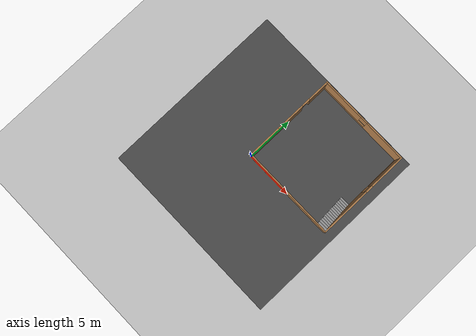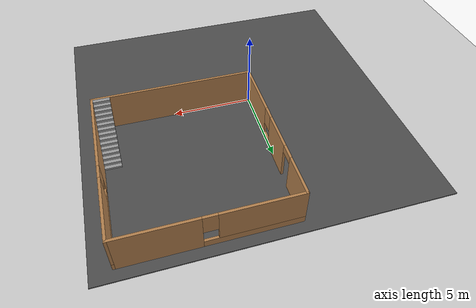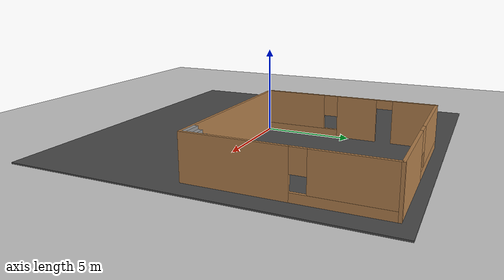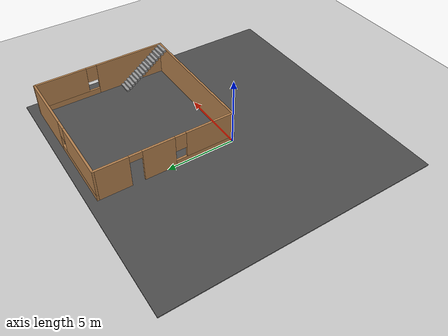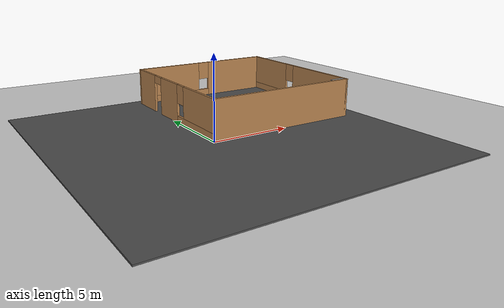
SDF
<sdf version="1.6">
 <world name="default">
  <light name="sun" type="directional">
   <pose>0 0 10 0 -0 0</pose>
   <diffuse>0.8 0.8 0.8 1</diffuse>
   <specular>0.2 0.2 0.2 1</specular>
   <attenuation>
    <range>1000</range>
    <constant>0.9</constant>
    <linear>0.01</linear>
    <quadratic>0.001</quadratic>
   </attenuation>
   <direction>-0.5 0.1 -0.9</direction>
  </light>
  <model name="ground_plane">
   <static>1</static>
   <link name="link">
    <collision name="collision">
     <geometry><plane><normal>0 0 1</normal><size>100 100</size></plane></geometry>
     <surface>
      <contact><collide_bitmask>65535</collide_bitmask></contact>
      <friction><ode><mu>100</mu><mu2>50</mu2></ode></friction>
     </surface>
    </collision>
    <visual name="visual">
     <cast_shadows>0</cast_shadows>
     <geometry><plane><normal>0 0 1</normal><size>100 100</size></plane></geometry>
     <material>
      <script><uri>file://media/materials/scripts/gazebo.material</uri><name>Gazebo/Grey</name></script>
     </material>
    </visual>
   </link>
  </model>
  <gravity>0 0 -9.8</gravity>
  <magnetic_field>6e-06 2.3e-05 -4.2e-05</magnetic_field>
  <atmosphere type="adiabatic"/>
  <physics name="default_physics" default="0" type="ode">
   <max_step_size>0.001</max_step_size>
   <real_time_factor>1</real_time_factor>
   <real_time_update_rate>1000</real_time_update_rate>
  </physics>
  <scene><ambient>0.4 0.4 0.4 1</ambient><background>0.7 0.7 0.7 1</background><shadows>1</shadows></scene>
  <audio><device>default</device></audio>
  <spherical_coordinates>
   <surface_model>EARTH_WGS84</surface_model>
   <latitude_deg>0</latitude_deg>
   <longitude_deg>0</longitude_deg>
   <elevation>0</elevation>
   <heading_deg>0</heading_deg>
  </spherical_coordinates>
  <model name="asphalt_plane">
   <static>1</static>
   <link name="link">
    <collision name="collision"><geometry><box><size>20 20 0.1</size></box></geometry></collision>
    <visual name="visual">
     <cast_shadows>0</cast_shadows>
     <geometry><box><size>20 20 0.1</size></box></geometry>
     <material>
      <script>
       <uri>model://asphalt_plane/materials/scripts</uri>
       <uri>model://asphalt_plane/materials/textures</uri>
       <name>vrc/asphalt</name>
      </script>
     </material>
    </visual>
   </link>
   <pose>1.14032 0.590295 0 0 -0 0</pose>
  </model>
  <model name="big_room">
   <pose>4.95889 4.95098 0 0 -0 0</pose>
   <link name="Stairs_0">
    <visual name="Stairs_0_Visual_0">
     <pose>4.3541 -1.47553 0.083333 0 -0 0</pose>
     <geometry><box><size>1 0.233333 0.166667</size></box></geometry>
     <material>
      <script><uri>file://media/materials/scripts/gazebo.material</uri><name>Gazebo/Grey</name></script>
      <ambient>1 1 1 1</ambient>
     </material>
     <meta><layer>0</layer></meta>
    </visual>
    <collision name="Stairs_0_Collision_0">
     <geometry><box><size>1 0.233333 0.166667</size></box></geometry>
     <pose>4.3541 -1.47553 0.083333 0 -0 0</pose>
    </collision>
    <visual name="Stairs_0_Visual_1">
     <pose>4.3541 -1.70886 0.25 0 -0 0</pose>
     <geometry><box><size>1 0.233333 0.166667</size></box></geometry>
     <material>
      <script><uri>file://media/materials/scripts/gazebo.material</uri><name>Gazebo/Grey</name></script>
      <ambient>1 1 1 1</ambient>
     </material>
     <meta><layer>0</layer></meta>
    </visual>
    <collision name="Stairs_0_Collision_1">
     <geometry><box><size>1 0.233333 0.166667</size></box></geometry>
     <pose>4.3541 -1.70886 0.25 0 -0 0</pose>
    </collision>
    <visual name="Stairs_0_Visual_2">
     <pose>4.3541 -1.94219 0.416667 0 -0 0</pose>
     <geometry><box><size>1 0.233333 0.166667</size></box></geometry>
     <material>
      <script><uri>file://media/materials/scripts/gazebo.material</uri><name>Gazebo/Grey</name></script>
      <ambient>1 1 1 1</ambient>
     </material>
     <meta><layer>0</layer></meta>
    </visual>
    <collision name="Stairs_0_Collision_2">
     <geometry><box><size>1 0.233333 0.166667</size></box></geometry>
     <pose>4.3541 -1.94219 0.416667 0 -0 0</pose>
    </collision>
    <visual name="Stairs_0_Visual_3">
     <pose>4.3541 -2.17553 0.583333 0 -0 0</pose>
     <geometry><box><size>1 0.233333 0.166667</size></box></geometry>
     <material>
      <script><uri>file://media/materials/scripts/gazebo.material</uri><name>Gazebo/Grey</name></script>
      <ambient>1 1 1 1</ambient>
     </material>
     <meta><layer>0</layer></meta>
    </visual>
    <collision name="Stairs_0_Collision_3">
     <geometry><box><size>1 0.233333 0.166667</size></box></geometry>
     <pose>4.3541 -2.17553 0.583333 0 -0 0</pose>
    </collision>
    <visual name="Stairs_0_Visual_4">
     <pose>4.3541 -2.40886 0.75 0 -0 0</pose>
     <geometry><box><size>1 0.233333 0.166667</size></box></geometry>
     <material>
      <script><uri>file://media/materials/scripts/gazebo.material</uri><name>Gazebo/Grey</name></script>
      <ambient>1 1 1 1</ambient>
     </material>
     <meta><layer>0</layer></meta>
    </visual>
    <collision name="Stairs_0_Collision_4">
     <geometry><box><size>1 0.233333 0.166667</size></box></geometry>
     <pose>4.3541 -2.40886 0.75 0 -0 0</pose>
    </collision>
    <visual name="Stairs_0_Visual_5">
     <pose>4.3541 -2.6422 0.916667 0 -0 0</pose>
     <geometry><box><size>1 0.233333 0.166667</size></box></geometry>
     <material>
      <script><uri>file://media/materials/scripts/gazebo.material</uri><name>Gazebo/Grey</name></script>
      <ambient>1 1 1 1</ambient>
     </material>
     <meta><layer>0</layer></meta>
    </visual>
    <collision name="Stairs_0_Collision_5">
     <geometry><box><size>1 0.233333 0.166667</size></box></geometry>
     <pose>4.3541 -2.6422 0.916667 0 -0 0</pose>
    </collision>
    <visual name="Stairs_0_Visual_6">
     <pose>4.3541 -2.87553 1.08333 0 -0 0</pose>
     <geometry><box><size>1 0.233333 0.166667</size></box></geometry>
     <material>
      <script><uri>file://media/materials/scripts/gazebo.material</uri><name>Gazebo/Grey</name></script>
      <ambient>1 1 1 1</ambient>
     </material>
     <meta><layer>0</layer></meta>
    </visual>
    <collision name="Stairs_0_Collision_6">
     <geometry><box><size>1 0.233333 0.166667</size></box></geometry>
     <pose>4.3541 -2.87553 1.08333 0 -0 0</pose>
    </collision>
    <visual name="Stairs_0_Visual_7">
     <pose>4.3541 -3.10886 1.25 0 -0 0</pose>
     <geometry><box><size>1 0.233333 0.166667</size></box></geometry>
     <material>
      <script><uri>file://media/materials/scripts/gazebo.material</uri><name>Gazebo/Grey</name></script>
      <ambient>1 1 1 1</ambient>
     </material>
     <meta><layer>0</layer></meta>
    </visual>
    <collision name="Stairs_0_Collision_7">
     <geometry><box><size>1 0.233333 0.166667</size></box></geometry>
     <pose>4.3541 -3.10886 1.25 0 -0 0</pose>
    </collision>
    <visual name="Stairs_0_Visual_8">
     <pose>4.3541 -3.3422 1.41667 0 -0 0</pose>
     <geometry><box><size>1 0.233333 0.166667</size></box></geometry>
     <material>
      <script><uri>file://media/materials/scripts/gazebo.material</uri><name>Gazebo/Grey</name></script>
      <ambient>1 1 1 1</ambient>
     </material>
     <meta><layer>0</layer></meta>
    </visual>
    <collision name="Stairs_0_Collision_8">
     <geometry><box><size>1 0.233333 0.166667</size></box></geometry>
     <pose>4.3541 -3.3422 1.41667 0 -0 0</pose>
    </collision>
    <visual name="Stairs_0_Visual_9">
     <pose>4.3541 -3.57553 1.58333 0 -0 0</pose>
     <geometry><box><size>1 0.233333 0.166667</size></box></geometry>
     <material>
      <script><uri>file://media/materials/scripts/gazebo.material</uri><name>Gazebo/Grey</name></script>
      <ambient>1 1 1 1</ambient>
     </material>
     <meta><layer>0</layer></meta>
    </visual>
    <collision name="Stairs_0_Collision_9">
     <geometry><box><size>1 0.233333 0.166667</size></box></geometry>
     <pose>4.3541 -3.57553 1.58333 0 -0 0</pose>
    </collision>
    <visual name="Stairs_0_Visual_10">
     <pose>4.3541 -3.80886 1.75 0 -0 0</pose>
     <geometry><box><size>1 0.233333 0.166667</size></box></geometry>
     <material>
      <script><uri>file://media/materials/scripts/gazebo.material</uri><name>Gazebo/Grey</name></script>
      <ambient>1 1 1 1</ambient>
     </material>
     <meta><layer>0</layer></meta>
    </visual>
    <collision name="Stairs_0_Collision_10">
     <geometry><box><size>1 0.233333 0.166667</size></box></geometry>
     <pose>4.3541 -3.80886 1.75 0 -0 0</pose>
    </collision>
    <visual name="Stairs_0_Visual_11">
     <pose>4.3541 -4.0422 1.91667 0 -0 0</pose>
     <geometry><box><size>1 0.233333 0.166667</size></box></geometry>
     <material>
      <script><uri>file://media/materials/scripts/gazebo.material</uri><name>Gazebo/Grey</name></script>
      <ambient>1 1 1 1</ambient>
     </material>
     <meta><layer>0</layer></meta>
    </visual>
    <collision name="Stairs_0_Collision_11">
     <geometry><box><size>1 0.233333 0.166667</size></box></geometry>
     <pose>4.3541 -4.0422 1.91667 0 -0 0</pose>
    </collision>
    <visual name="Stairs_0_Visual_12">
     <pose>4.3541 -4.27553 2.08333 0 -0 0</pose>
     <geometry><box><size>1 0.233333 0.166667</size></box></geometry>
     <material>
      <script><uri>file://media/materials/scripts/gazebo.material</uri><name>Gazebo/Grey</name></script>
      <ambient>1 1 1 1</ambient>
     </material>
     <meta><layer>0</layer></meta>
    </visual>
    <collision name="Stairs_0_Collision_12">
     <geometry><box><size>1 0.233333 0.166667</size></box></geometry>
     <pose>4.3541 -4.27553 2.08333 0 -0 0</pose>
    </collision>
    <visual name="Stairs_0_Visual_13">
     <pose>4.3541 -4.50886 2.25 0 -0 0</pose>
     <geometry><box><size>1 0.233333 0.166667</size></box></geometry>
     <material>
      <script><uri>file://media/materials/scripts/gazebo.material</uri><name>Gazebo/Grey</name></script>
      <ambient>1 1 1 1</ambient>
     </material>
     <meta><layer>0</layer></meta>
    </visual>
    <collision name="Stairs_0_Collision_13">
     <geometry><box><size>1 0.233333 0.166667</size></box></geometry>
     <pose>4.3541 -4.50886 2.25 0 -0 0</pose>
    </collision>
    <visual name="Stairs_0_Visual_14">
     <pose>4.3541 -4.7422 2.41667 0 -0 0</pose>
     <geometry><box><size>1 0.233333 0.166667</size></box></geometry>
     <material>
      <script><uri>file://media/materials/scripts/gazebo.material</uri><name>Gazebo/Grey</name></script>
      <ambient>1 1 1 1</ambient>
     </material>
     <meta><layer>0</layer></meta>
    </visual>
    <collision name="Stairs_0_Collision_14">
     <geometry><box><size>1 0.233333 0.166667</size></box></geometry>
     <pose>4.3541 -4.7422 2.41667 0 -0 0</pose>
    </collision>
   </link>
   <link name="Wall_19">
    <collision name="Wall_19_Collision">
     <geometry><box><size>10 0.15 2.5</size></box></geometry>
     <pose>0 0 1.25 0 -0 0</pose>
    </collision>
    <visual name="Wall_19_Visual">
     <pose>0 0 1.25 0 -0 0</pose>
     <geometry><box><size>10 0.15 2.5</size></box></geometry>
     <material>
      <script><uri>file://media/materials/scripts/gazebo.material</uri><name>Gazebo/Wood</name></script>
      <ambient>0.333333 0.341176 0.32549 1</ambient>
     </material>
     <meta><layer>0</layer></meta>
    </visual>
    <pose>0 -4.925 0 0 -0 0</pose>
   </link>
   <link name="Wall_20">
    <pose>4.925 0 0 0 -0 1.5708</pose>
    <visual name="Wall_20_Visual_0">
     <pose>-2.32807 0 1.25 0 -0 0</pose>
     <geometry><box><size>5.34386 0.15 2.5</size></box></geometry>
     <material>
      <script><uri>file://media/materials/scripts/gazebo.material</uri><name>Gazebo/Wood</name></script>
      <ambient>0.333333 0.341176 0.32549 1</ambient>
     </material>
     <meta><layer>0</layer></meta>
    </visual>
    <collision name="Wall_20_Collision_0">
     <geometry><box><size>5.34386 0.15 2.5</size></box></geometry>
     <pose>-2.32807 0 1.25 0 -0 0</pose>
    </collision>
    <visual name="Wall_20_Visual_1">
     <pose>2.67193 0 0.25 0 -0 0</pose>
     <geometry><box><size>4.65614 0.15 0.5</size></box></geometry>
     <material>
      <script><uri>file://media/materials/scripts/gazebo.material</uri><name>Gazebo/Wood</name></script>
      <ambient>0.333333 0.341176 0.32549 1</ambient>
     </material>
     <meta><layer>0</layer></meta>
    </visual>
    <collision name="Wall_20_Collision_1">
     <geometry><box><size>4.65614 0.15 0.5</size></box></geometry>
     <pose>2.67193 0 0.25 0 -0 0</pose>
    </collision>
    <visual name="Wall_20_Visual_2">
     <pose>3.07193 0 1.5 0 -0 0</pose>
     <geometry><box><size>3.85614 0.15 2</size></box></geometry>
     <material>
      <script><uri>file://media/materials/scripts/gazebo.material</uri><name>Gazebo/Wood</name></script>
      <ambient>0.333333 0.341176 0.32549 1</ambient>
     </material>
     <meta><layer>0</layer></meta>
    </visual>
    <collision name="Wall_20_Collision_2">
     <geometry><box><size>3.85614 0.15 2</size></box></geometry>
     <pose>3.07193 0 1.5 0 -0 0</pose>
    </collision>
    <visual name="Wall_20_Visual_3">
     <pose>0.743861 0 1.9 0 -0 0</pose>
     <geometry><box><size>0.8 0.15 1.2</size></box></geometry>
     <material>
      <script><uri>file://media/materials/scripts/gazebo.material</uri><name>Gazebo/Wood</name></script>
      <ambient>0.333333 0.341176 0.32549 1</ambient>
     </material>
     <meta><layer>0</layer></meta>
    </visual>
    <collision name="Wall_20_Collision_3">
     <geometry><box><size>0.8 0.15 1.2</size></box></geometry>
     <pose>0.743861 0 1.9 0 -0 0</pose>
    </collision>
   </link>
   <link name="Wall_21">
    <pose>0 4.925 0 0 -0 3.14159</pose>
    <visual name="Wall_21_Visual_0">
     <pose>-2.71436 0 1.25 0 -0 0</pose>
     <geometry><box><size>4.57127 0.15 2.5</size></box></geometry>
     <material>
      <script><uri>file://media/materials/scripts/gazebo.material</uri><name>Gazebo/Wood</name></script>
      <ambient>0.333333 0.341176 0.32549 1</ambient>
     </material>
     <meta><layer>0</layer></meta>
    </visual>
    <collision name="Wall_21_Collision_0">
     <geometry><box><size>4.57127 0.15 2.5</size></box></geometry>
     <pose>-2.71436 0 1.25 0 -0 0</pose>
    </collision>
    <visual name="Wall_21_Visual_1">
     <pose>2.28564 0 0.25 0 -0 0</pose>
     <geometry><box><size>5.42873 0.15 0.5</size></box></geometry>
     <material>
      <script><uri>file://media/materials/scripts/gazebo.material</uri><name>Gazebo/Wood</name></script>
      <ambient>0.333333 0.341176 0.32549 1</ambient>
     </material>
     <meta><layer>0</layer></meta>
    </visual>
    <collision name="Wall_21_Collision_1">
     <geometry><box><size>5.42873 0.15 0.5</size></box></geometry>
     <pose>2.28564 0 0.25 0 -0 0</pose>
    </collision>
    <visual name="Wall_21_Visual_2">
     <pose>2.68564 0 1.5 0 -0 0</pose>
     <geometry><box><size>4.62873 0.15 2</size></box></geometry>
     <material>
      <script><uri>file://media/materials/scripts/gazebo.material</uri><name>Gazebo/Wood</name></script>
      <ambient>0.333333 0.341176 0.32549 1</ambient>
     </material>
     <meta><layer>0</layer></meta>
    </visual>
    <collision name="Wall_21_Collision_2">
     <geometry><box><size>4.62873 0.15 2</size></box></geometry>
     <pose>2.68564 0 1.5 0 -0 0</pose>
    </collision>
    <visual name="Wall_21_Visual_3">
     <pose>-0.028728 0 1.9 0 -0 0</pose>
     <geometry><box><size>0.8 0.15 1.2</size></box></geometry>
     <material>
      <script><uri>file://media/materials/scripts/gazebo.material</uri><name>Gazebo/Wood</name></script>
      <ambient>0.333333 0.341176 0.32549 1</ambient>
     </material>
     <meta><layer>0</layer></meta>
    </visual>
    <collision name="Wall_21_Collision_3">
     <geometry><box><size>0.8 0.15 1.2</size></box></geometry>
     <pose>-0.028728 0 1.9 0 -0 0</pose>
    </collision>
   </link>
   <link name="Wall_22">
    <pose>-4.925 0 0 0 -0 -1.5708</pose>
    <visual name="Wall_22_Visual_0">
     <pose>-3.79653 0 1.25 0 -0 0</pose>
     <geometry><box><size>2.40693 0.15 2.5</size></box></geometry>
     <material>
      <script><uri>file://media/materials/scripts/gazebo.material</uri><name>Gazebo/Wood</name></script>
      <ambient>0.333333 0.341176 0.32549 1</ambient>
     </material>
     <meta><layer>0</layer></meta>
    </visual>
    <collision name="Wall_22_Collision_0">
     <geometry><box><size>2.40693 0.15 2.5</size></box></geometry>
     <pose>-3.79653 0 1.25 0 -0 0</pose>
    </collision>
    <visual name="Wall_22_Visual_1">
     <pose>-0.552578 0 1.25 0 -0 0</pose>
     <geometry><box><size>2.28098 0.15 2.5</size></box></geometry>
     <material>
      <script><uri>file://media/materials/scripts/gazebo.material</uri><name>Gazebo/Wood</name></script>
      <ambient>0.333333 0.341176 0.32549 1</ambient>
     </material>
     <meta><layer>0</layer></meta>
    </visual>
    <collision name="Wall_22_Collision_1">
     <geometry><box><size>2.28098 0.15 2.5</size></box></geometry>
     <pose>-0.552578 0 1.25 0 -0 0</pose>
    </collision>
    <visual name="Wall_22_Visual_2">
     <pose>2.79395 0 0.25 0 -0 0</pose>
     <geometry><box><size>4.41209 0.15 0.5</size></box></geometry>
     <material>
      <script><uri>file://media/materials/scripts/gazebo.material</uri><name>Gazebo/Wood</name></script>
      <ambient>0.333333 0.341176 0.32549 1</ambient>
     </material>
     <meta><layer>0</layer></meta>
    </visual>
    <collision name="Wall_22_Collision_2">
     <geometry><box><size>4.41209 0.15 0.5</size></box></geometry>
     <pose>2.79395 0 0.25 0 -0 0</pose>
    </collision>
    <visual name="Wall_22_Visual_3">
     <pose>3.19395 0 1.5 0 -0 0</pose>
     <geometry><box><size>3.61209 0.15 2</size></box></geometry>
     <material>
      <script><uri>file://media/materials/scripts/gazebo.material</uri><name>Gazebo/Wood</name></script>
      <ambient>0.333333 0.341176 0.32549 1</ambient>
     </material>
     <meta><layer>0</layer></meta>
    </visual>
    <collision name="Wall_22_Collision_3">
     <geometry><box><size>3.61209 0.15 2</size></box></geometry>
     <pose>3.19395 0 1.5 0 -0 0</pose>
    </collision>
    <visual name="Wall_22_Visual_4">
     <pose>0.987909 0 1.9 0 -0 0</pose>
     <geometry><box><size>0.8 0.15 1.2</size></box></geometry>
     <material>
      <script><uri>file://media/materials/scripts/gazebo.material</uri><name>Gazebo/Wood</name></script>
      <ambient>0.333333 0.341176 0.32549 1</ambient>
     </material>
     <meta><layer>0</layer></meta>
    </visual>
    <collision name="Wall_22_Collision_4">
     <geometry><box><size>0.8 0.15 1.2</size></box></geometry>
     <pose>0.987909 0 1.9 0 -0 0</pose>
    </collision>
    <visual name="Wall_22_Visual_5">
     <pose>-2.14307 0 2.25 0 -0 0</pose>
     <geometry><box><size>0.9 0.15 0.5</size></box></geometry>
     <material>
      <script><uri>file://media/materials/scripts/gazebo.material</uri><name>Gazebo/Wood</name></script>
      <ambient>0.333333 0.341176 0.32549 1</ambient>
     </material>
     <meta><layer>0</layer></meta>
    </visual>
    <collision name="Wall_22_Collision_5">
     <geometry><box><size>0.9 0.15 0.5</size></box></geometry>
     <pose>-2.14307 0 2.25 0 -0 0</pose>
    </collision>
   </link>
   <static>1</static>
  </model>
 </world>
</sdf>
